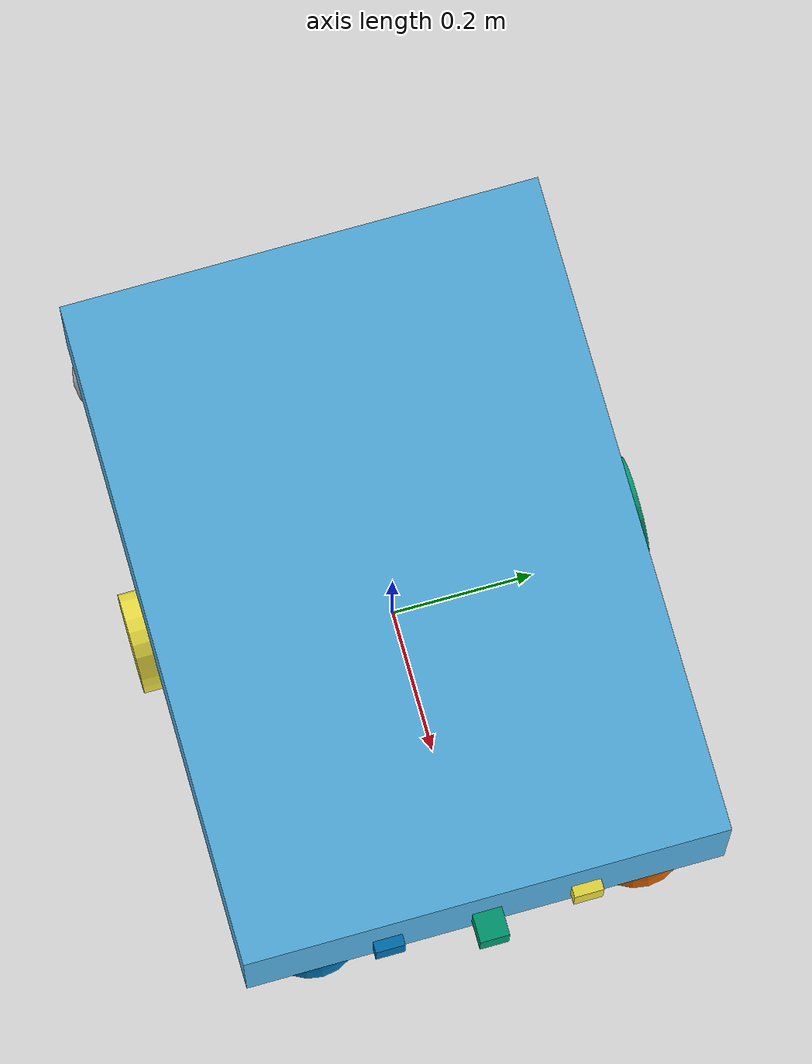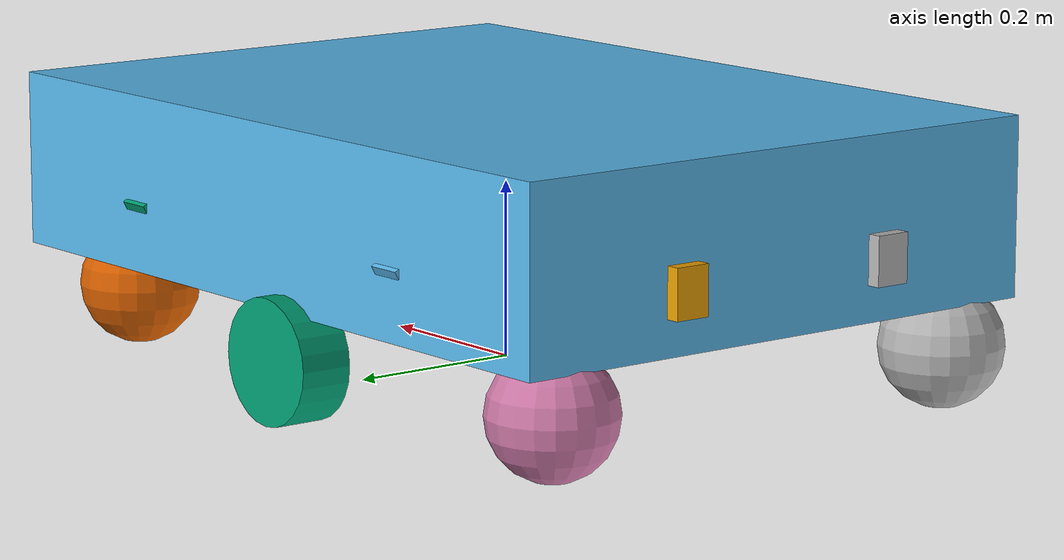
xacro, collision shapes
<?xml version="1.0"?>

<robot xmlns:xacro="http://ros.org/wiki/xacro" name="overlord100">

    <xacro:include filename="$(find bot_description)/urdf/overlord100_gazebo.xacro"/>

    <link name="base_footprint"/>

    <link name="base_link">
        <visual>
            <origin rpy="0 0 -1.57075" xyz="0 0 -0.20" />
            <geometry>
                <mesh filename="package://bot_description/meshes/base.dae"/>
            </geometry>
        </visual>

        <inertial>
            <mass value="60.5" />
            <inertia ixx="0.45375" ixy="0.0" ixz="0.0" iyy="2.263304" iyz="0.0" izz="2.716954" />
        </inertial>

        <collision>
            <geometry>
                <box size="0.93 0.67 0.2" />
            </geometry>
        </collision>
    </link>

    <joint name="base_joint" type="fixed">
        <parent link="base_footprint" />
        <child link="base_link" />
        <origin rpy="0 0 0" xyz="0 0 0.20" />
    </joint>

    <!-- wheels -->
    <link name="left_wheel">
        <visual>
            <origin rpy="0 0 -1.57075" xyz="0 0 -0.0655" />
            <geometry>
                <mesh filename = "package://bot_description/meshes/left_wheel.dae"  />
            </geometry>
        </visual>

        <inertial>
            <mass value="1" />
            <inertia ixx="0.0175" ixy="0.0" ixz="0.0" iyy="0.0175" iyz="0.0" izz="0.02" />
        </inertial>
        <collision>
            <origin rpy="1.57075 0 0" xyz="0 0 0" />
            <geometry>
                <cylinder radius = "0.07" length = "0.06" />
            </geometry>
        </collision>
    </link>

    <joint name="base_link_to_left_wheel" type="continuous">
        <axis xyz="0 1 0" />
        <limit effort="1000.0" lower="-1.79769e+308" upper="1.79769e+308" velocity="100.0" />
        <parent link="base_link" />
        <child link="left_wheel" />
        <origin rpy="0 0 0" xyz="-0.045 0.33 -0.15" />
    </joint>

    <link name="right_wheel">
        <visual>
            <origin rpy="0 0 -1.57075" xyz="0 0 -0.0655" />
            <geometry>
                <mesh filename = "package://bot_description/meshes/right_wheel.dae"/>
            </geometry>
        </visual>
        <inertial>
            <mass value="1" />
            <inertia ixx="0.0175" ixy="0.0" ixz="0.0" iyy="0.0175" iyz="0.0" izz="0.02" />
        </inertial>
        <collision>
            <origin rpy="1.57075 0 0" xyz="0 0 0" />
            <geometry>
                <cylinder radius = "0.07" length = "0.06" />
            </geometry>
        </collision>
    </link>

    <joint name="base_link_to_right_wheel" type="continuous">
        <axis xyz="0 1 0" />
        <limit effort="1000.0" lower="-1.79769e+308" upper="1.79769e+308" velocity="100.0" />
        <parent link="base_link" />
        <child link="right_wheel" />
        <origin rpy="0 0 0" xyz="-0.045 -0.33 -0.15" />
    </joint>

    <link name="front_left_dummy_wheel">
        <visual>
        <origin rpy="0 0 -1.57075" xyz=" 0 0 -0.07" />
            <geometry>
                <mesh filename = "package://bot_description/meshes/front_left_wheel.dae" />
            </geometry>
        </visual>
        <inertial>
            <mass value="1" />
            <inertia ixx="0.016" ixy="0.0" ixz="0.0" iyy="0.016" iyz="0.0" izz="0.016" />
        </inertial>
        <collision>
            <geometry>
                <sphere radius= "0.07" />
            </geometry>
        </collision>
    </link>

    <joint name="base_link_to_front_left_dummy_wheel" type="fixed">
        <parent link="base_link" />
            <child link="front_left_dummy_wheel" />
        <origin rpy="0 0 0" xyz="0.40 -0.23 -0.15" />
    </joint>

    <link name="front_right_dummy_wheel">
        <visual>
            <origin rpy="0 0 -1.57075" xyz=" 0 0 -0.07" />
            <geometry>
                <mesh filename = "package://bot_description/meshes/front_right_wheel.dae" />
            </geometry>
        </visual>
        <inertial>
            <mass value="1" />
            <inertia ixx="0.016" ixy="0.0" ixz="0.0" iyy="0.016" iyz="0.0" izz="0.016" />
        </inertial>
        <collision>
            <geometry>
                <sphere radius= "0.07" />
            </geometry>
        </collision>
    </link>

    <joint name="base_link_to_front_right_dummy_wheel" type="fixed">
        <parent link="base_link" />
        <child link="front_right_dummy_wheel" />
        <origin rpy="0 0 0" xyz="0.40 0.23 -0.15" />
    </joint>

    <link name="back_right_dummy_wheel">
        <visual>
            <origin rpy="0 0 -1.57075" xyz=" 0 0 -0.07" />
            <geometry>
                <mesh filename = "package://bot_description/meshes/back_right_wheel.dae"  />
            </geometry>
        </visual>
        <inertial>
            <mass value="1" />
            <inertia ixx="0.016" ixy="0.0" ixz="0.0" iyy="0.016" iyz="0.0" izz="0.016" />
        </inertial>
        <collision>
            <geometry>
                <sphere radius= "0.07" />
            </geometry>
        </collision>
    </link>

    <joint name="base_link_to_back_right_dummy_wheel" type="fixed">
        <parent link="base_link" />
        <child link="back_right_dummy_wheel" />
        <origin rpy="0 0 0" xyz="-0.42  0.27 -0.15" />
    </joint>

    <link name="back_left_dummy_wheel">
        <visual>
            <origin rpy="0 0 -1.57075" xyz=" 0 0 -0.07" />
            <geometry>
                <mesh filename = "package://bot_description/meshes/back_left_wheel.dae"  />
            </geometry>
        </visual>
        <collision>
            <geometry>
                <sphere radius= "0.07" />
            </geometry>
        </collision>
        <inertial>
            <mass value="1" />
            <inertia ixx="0.016" ixy="0.0" ixz="0.0" iyy="0.016" iyz="0.0" izz="0.016" />
        </inertial>
    </link>

    <joint name="base_link_to_back_left_dummy_wheel" type="fixed">
        <parent link="base_link" />
        <child link="back_left_dummy_wheel" />
        <origin rpy="0 0 0" xyz="-0.42 -0.27 -0.15" />
    </joint>

    <!-- lidars -->
    <link name="lidar_front">
        <visual>
            <geometry>
                <mesh filename = "package://bot_description/meshes/front_lidar.dae"  />
            </geometry>
        </visual>
        <inertial>
            <mass value="0.1" />
            <inertia ixx="0.000158" ixy="0.0" ixz="0.0" iyy="0.000158" iyz="0.0" izz="0.00018" />
        </inertial>
        <collision>
            <geometry>
                <box size = "0.061 0.041 0.055" />
            </geometry>
        </collision>
    </link>

    <joint name="base_link_to_lidar_front" type="fixed">
        <parent link="base_link" />
        <child link="lidar_front" />
        <origin rpy="0 0 0" xyz="0.43 0.26 0" />
    </joint>

    <link name="lidar_back">
        <visual>
            <geometry>
                <mesh filename = "package://bot_description/meshes/back_lidar.dae"  />
            </geometry>
        </visual>
        <inertial>
            <mass value="0.1" />
            <inertia ixx="0.000158" ixy="0.0" ixz="0.0" iyy="0.000158" iyz="0.0" izz="0.00018" />
        </inertial>
        <collision>
            <geometry>
                <box size = "0.061 0.041 0.055" />
            </geometry>
        </collision>
    </link>

    <joint name="base_link_to_lidar_back" type="fixed">
        <parent link="base_link" />
        <child link="lidar_back" />
        <origin rpy="0 0 0" xyz="-0.42 -0.26 0" />
    </joint>

    <!-- camera -->
    <link name="realsense">
        <visual>
            <origin rpy="0 0 -1.57075" xyz="0 0 0"/>
            <geometry>
                <mesh filename = "package://bot_description/meshes/realsense.dae"  />
            </geometry>
        </visual>
        <inertial>
            <mass value="0.1" />
            <inertia ixx="0.000158" ixy="0.0" ixz="0.0" iyy="0.000158" iyz="0.0" izz="0.00018" />
        </inertial>
        <collision>
            <geometry>
                <box size = "0.061 0.041 0.055" />
            </geometry>
        </collision>
    </link>

    <joint name = "base_link_to_realsense" type = "fixed">
        <parent link="base_link" />
        <child link="realsense" />
        <origin xyz = "0.4745 0 -0.0332"/>
    </joint>

    <!-- sonars -->
    <link name="sonar1">
        <visual>
            <origin rpy="0 0 -1.57075" xyz="0 0 0"/>
            <geometry>
                <mesh filename = "package://bot_description/meshes/sonar1.dae"/>
            </geometry>
        </visual>
        <inertial>
            <mass value="0.1" />
            <inertia ixx="0.000158" ixy="0.0" ixz="0.0" iyy="0.000158" iyz="0.0" izz="0.00018" />
        </inertial>
        <collision>
            <geometry>
                <box size = "0.061 0.041 0.055" />
            </geometry>
        </collision>
    </link>

    <joint name = "base_link_to_sonar1" type = "fixed">
        <parent link="base_link" />
        <child link="sonar1" />
        <origin xyz = "0.45 0.138 -0.032" rpy = "0 0 0"/>
    </joint>

    <link name="sonar2">
        <visual>
            <origin rpy="0 0 -1.57075" xyz="0 0 0"/>
            <geometry>
                <mesh filename = "package://bot_description/meshes/sonar2.dae"  />
            </geometry>
        </visual>
        <inertial>
            <mass value="0.1" />
            <inertia ixx="0.000158" ixy="0.0" ixz="0.0" iyy="0.000158" iyz="0.0" izz="0.00018" />
        </inertial>
        <collision>
            <geometry>
                <box size = "0.061 0.041 0.055" />
            </geometry>
        </collision>
    </link>

    <joint name = "base_link_to_sonar2" type = "fixed">
        <parent link="base_link" />
        <child link="sonar2" />
        <origin xyz = " 0.45 -0.138 -0.032" rpy = "0 0 0"/>
    </joint>

    <link name="sonar3">
        <visual>
            <origin rpy="0 0.5 1.57075" xyz="0 0 0"/>
            <geometry>
                <mesh filename = "package://bot_description/meshes/sonar3.dae"  />
            </geometry>
        </visual>
        <inertial>
            <mass value="0.1" />
            <inertia ixx="0.000158" ixy="0.0" ixz="0.0" iyy="0.000158" iyz="0.0" izz="0.00018" />
        </inertial>
        <collision>
            <geometry>
                <box size = "0.061 0.041 0.055" />
            </geometry>
        </collision>
    </link>

    <joint name = "base_link_to_sonar3" type = "fixed">
        <parent link="base_link" />
        <child link="sonar3" />
        <origin xyz = "0.24 -0.3 -0.032" rpy = "0.5 0 0"/>
    </joint>

    <link name="sonar4">
        <visual>
            <origin rpy="0 0.5 1.57075" xyz="0 0 0"/>
            <geometry>
                <mesh filename = "package://bot_description/meshes/sonar4.dae"  />
            </geometry>
        </visual>
        <inertial>
            <mass value="0.1" />
            <inertia ixx="0.000158" ixy="0.0" ixz="0.0" iyy="0.000158" iyz="0.0" izz="0.00018" />
        </inertial>
        <collision>
            <geometry>
                <box size = "0.061 0.041 0.055" />
            </geometry>
        </collision>
    </link>

    <joint name = "base_link_to_sonar4" type = "fixed">
        <parent link="base_link" />
        <child link="sonar4" />
        <origin xyz = "-0.23 -0.3 -0.032" rpy = "0.5 0 0"/>
    </joint>

    <link name="sonar5">
        <visual>
            <origin rpy="0 0 1.57075" xyz="0 0 0"/>
            <geometry>
                <mesh filename = "package://bot_description/meshes/sonar5.dae"  />
            </geometry>
        </visual>
        <inertial>
            <mass value="0.1" />
            <inertia ixx="0.000158" ixy="0.0" ixz="0.0" iyy="0.000158" iyz="0.0" izz="0.00018" />
        </inertial>
        <collision>
            <geometry>
                <box size = "0.061 0.041 0.055" />
            </geometry>
        </collision>
    </link>

    <joint name = "base_link_to_sonar5" type = "fixed">
        <parent link="base_link" />
        <child link="sonar5" />
        <origin xyz = "-0.45 -0.138 -0.032" rpy = "0 0 -3.1415"/>
    </joint>

    <link name="sonar6">
        <visual>
            <origin rpy="0 0 1.57075" xyz="0 0 0"/>
            <geometry>
                <mesh filename = "package://bot_description/meshes/sonar6.dae"  />
            </geometry>
        </visual>
        <inertial>
            <mass value="0.1" />
            <inertia ixx="0.000158" ixy="0.0" ixz="0.0" iyy="0.000158" iyz="0.0" izz="0.00018" />
        </inertial>
        <collision>
            <geometry>
                <box size = "0.061 0.041 0.055" />
            </geometry>
        </collision>
    </link>

    <joint name = "base_link_to_sonar6" type = "fixed">
        <parent link="base_link" />
        <child link="sonar6" />
        <origin xyz = "-0.45 0.138 -0.032" rpy = "0 0 -3.1415"/>
    </joint>

    <link name="sonar7">
        <visual>
            <origin rpy="0 -0.5 0" xyz="0 0 0"/>
            <geometry>
                <mesh filename = "package://bot_description/meshes/sonar7.dae"  />
            </geometry>
        </visual>
        <inertial>
            <mass value="0.1" />
            <inertia ixx="0.000158" ixy="0.0" ixz="0.0" iyy="0.000158" iyz="0.0" izz="0.00018" />
        </inertial>
        <collision>
            <geometry>
                <box size = "0.061 0.041 0.055" />
            </geometry>
        </collision>
    </link>

    <joint name = "base_link_to_sonar7" type = "fixed">
        <parent link="base_link" />
        <child link="sonar7" />
        <origin xyz = "-0.23 0.3 -0.032" rpy = "0 0.5 1.57075"/>
    </joint>

    <link name="sonar8">
        <visual>
            <origin rpy="0 -0.5 0" xyz="0 0 0"/>
            <geometry>
                <mesh filename = "package://bot_description/meshes/sonar8.dae"  />
            </geometry>
        </visual>
        <inertial>
            <mass value="0.1" />
            <inertia ixx="0.000158" ixy="0.0" ixz="0.0" iyy="0.000158" iyz="0.0" izz="0.00018" />
        </inertial>
        <collision>
            <geometry>
                <box size = "0.061 0.041 0.055" />
            </geometry>
        </collision>
    </link>

    <joint name = "base_link_to_sonar8" type = "fixed">
        <parent link="base_link" />
        <child link="sonar8" />
        <origin xyz = "0.24 0.3 -0.032" rpy= "0 0.5 1.57075"/>
    </joint>

</robot>
